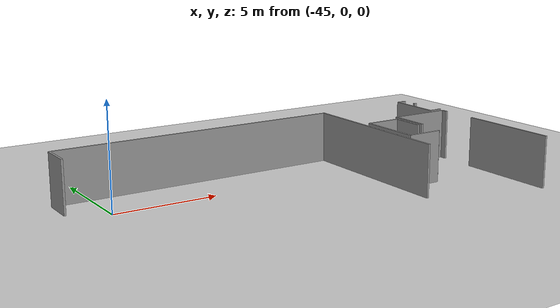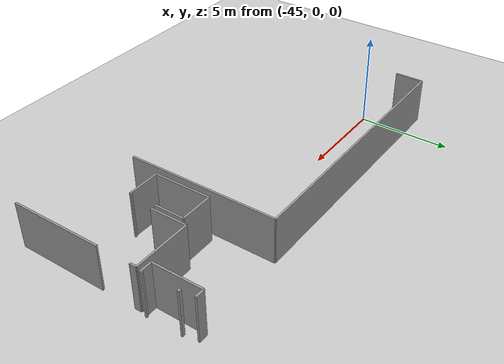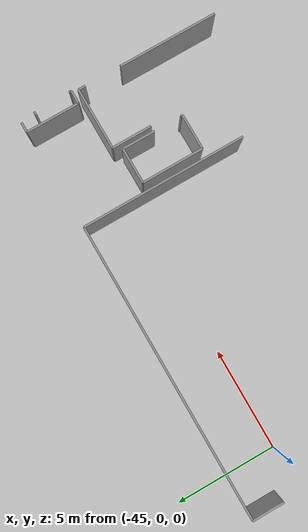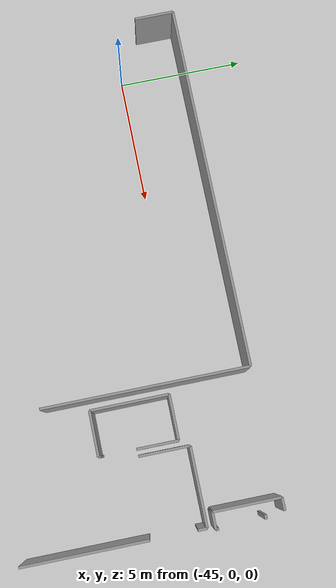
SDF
<sdf version="1.6">
 <world name="default">
  <model name="ground_plane">
   <static>1</static>
   <link name="link">
    <collision name="collision">
     <geometry><plane><normal>0 0 1</normal><size>100 100</size></plane></geometry>
     <surface><friction><ode><mu>100</mu><mu2>50</mu2></ode></friction></surface>
    </collision>
    <visual name="visual">
     <cast_shadows>0</cast_shadows>
     <geometry><plane><normal>0 0 1</normal><size>100 100</size></plane></geometry>
     <material>
      <script><uri>file://media/materials/scripts/gazebo.material</uri><name>Gazebo/Grey</name></script>
     </material>
    </visual>
   </link>
  </model>
  <model name="50045233">
   <static>1</static>
   <link name="Wall_115">
    <collision name="Wall_115_Collision">
     <geometry><box><size>1.54550934298 0.1 2.5</size></box></geometry>
     <pose>0.772754671489 0 1.25 0 0 0</pose>
    </collision>
    <visual name="Wall_115_Visual">
     <pose>0.772754671489 0 1.25 0 0 0</pose>
     <geometry><box><size>1.54550934298 0.1 2.5</size></box></geometry>
     <material>
      <script><uri>file://media/materials/scripts/gazebo.material</uri><name>Gazebo/Grey</name></script>
      <ambient>1 1 1 1</ambient>
     </material>
    </visual>
    <pose>0.0303289870245 -18.270613242 0 0 0 1.57079632679</pose>
   </link>
   <link name="Wall_116">
    <collision name="Wall_116_Collision">
     <geometry><box><size>14.4631198249 0.1 2.5</size></box></geometry>
     <pose>7.23155991244 0 1.25 0 0 0</pose>
    </collision>
    <visual name="Wall_116_Visual">
     <pose>7.23155991244 0 1.25 0 0 0</pose>
     <geometry><box><size>14.4631198249 0.1 2.5</size></box></geometry>
     <material>
      <script><uri>file://media/materials/scripts/gazebo.material</uri><name>Gazebo/Grey</name></script>
      <ambient>1 1 1 1</ambient>
     </material>
    </visual>
    <pose>0.0303289870245 -16.725103899 0 0 0 0.0</pose>
   </link>
   <link name="Wall_117">
    <collision name="Wall_117_Collision">
     <geometry><box><size>8.1050728086 0.1 2.5</size></box></geometry>
     <pose>4.0525364043 0 1.25 0 0 0</pose>
    </collision>
    <visual name="Wall_117_Visual">
     <pose>4.0525364043 0 1.25 0 0 0</pose>
     <geometry><box><size>8.1050728086 0.1 2.5</size></box></geometry>
     <material>
      <script><uri>file://media/materials/scripts/gazebo.material</uri><name>Gazebo/Grey</name></script>
      <ambient>1 1 1 1</ambient>
     </material>
    </visual>
    <pose>14.4934488119 -16.725103899 0 0 0 -1.57079632679</pose>
   </link>
   <link name="Wall_204">
    <collision name="Wall_204_Collision">
     <geometry><box><size>2.62796231084 0.1 2.5</size></box></geometry>
     <pose>1.31398115542 0 1.25 0 0 0</pose>
    </collision>
    <visual name="Wall_204_Visual">
     <pose>1.31398115542 0 1.25 0 0 0</pose>
     <geometry><box><size>2.62796231084 0.1 2.5</size></box></geometry>
     <material>
      <script><uri>file://media/materials/scripts/gazebo.material</uri><name>Gazebo/Grey</name></script>
      <ambient>1 1 1 1</ambient>
     </material>
    </visual>
    <pose>19.4633418991 -19.2616985502 0 0 0 1.57079632679</pose>
   </link>
   <link name="Wall_205">
    <collision name="Wall_205_Collision">
     <geometry><box><size>0.48818248152 0.1 2.5</size></box></geometry>
     <pose>0.24409124076 0 1.25 0 0 0</pose>
    </collision>
    <visual name="Wall_205_Visual">
     <pose>0.24409124076 0 1.25 0 0 0</pose>
     <geometry><box><size>0.48818248152 0.1 2.5</size></box></geometry>
     <material>
      <script><uri>file://media/materials/scripts/gazebo.material</uri><name>Gazebo/Grey</name></script>
      <ambient>1 1 1 1</ambient>
     </material>
    </visual>
    <pose>19.4633418991 -16.6337362393 0 0 0 0.0</pose>
   </link>
   <link name="Wall_207">
    <collision name="Wall_207_Collision">
     <geometry><box><size>0.159132007233 0.1 2.5</size></box></geometry>
     <pose>0.0795660036166 0 1.25 0 0 0</pose>
    </collision>
    <visual name="Wall_207_Visual">
     <pose>0.0795660036166 0 1.25 0 0 0</pose>
     <geometry><box><size>0.159132007233 0.1 2.5</size></box></geometry>
     <material>
      <script><uri>file://media/materials/scripts/gazebo.material</uri><name>Gazebo/Grey</name></script>
      <ambient>1 1 1 1</ambient>
     </material>
    </visual>
    <pose>19.9515243806 -17.3689921005 0 0 0 0.0</pose>
   </link>
   <link name="Wall_209">
    <collision name="Wall_209_Collision">
     <geometry><box><size>0.108879794423 0.1 2.5</size></box></geometry>
     <pose>0.0544398972114 0 1.25 0 0 0</pose>
    </collision>
    <visual name="Wall_209_Visual">
     <pose>0.0544398972114 0 1.25 0 0 0</pose>
     <geometry><box><size>0.108879794423 0.1 2.5</size></box></geometry>
     <material>
      <script><uri>file://media/materials/scripts/gazebo.material</uri><name>Gazebo/Grey</name></script>
      <ambient>1 1 1 1</ambient>
     </material>
    </visual>
    <pose>20.1106563878 -19.1557374449 0 0 0 -1.57079632679</pose>
   </link>
   <link name="Wall_210">
    <collision name="Wall_210_Collision">
     <geometry><box><size>0.647321068788 0.1 2.5</size></box></geometry>
     <pose>0.323660534394 0 1.25 0 0 0</pose>
    </collision>
    <visual name="Wall_210_Visual">
     <pose>0.323660534394 0 1.25 0 0 0</pose>
     <geometry><box><size>0.647321068788 0.1 2.5</size></box></geometry>
     <material>
      <script><uri>file://media/materials/scripts/gazebo.material</uri><name>Gazebo/Grey</name></script>
      <ambient>1 1 1 1</ambient>
     </material>
    </visual>
    <pose>20.1106563878 -19.2646172393 0 0 0 3.13708376433</pose>
   </link>
   <link name="Wall_213">
    <collision name="Wall_213_Collision">
     <geometry><box><size>1.9663081755 0.1 2.5</size></box></geometry>
     <pose>0.983154087751 0 1.25 0 0 0</pose>
    </collision>
    <visual name="Wall_213_Visual">
     <pose>0.983154087751 0 1.25 0 0 0</pose>
     <geometry><box><size>1.9663081755 0.1 2.5</size></box></geometry>
     <material>
      <script><uri>file://media/materials/scripts/gazebo.material</uri><name>Gazebo/Grey</name></script>
      <ambient>1 1 1 1</ambient>
     </material>
    </visual>
    <pose>16.9427365883 -21.5356111798 0 0 0 1.57079632679</pose>
   </link>
   <link name="Wall_214">
    <collision name="Wall_214_Collision">
     <geometry><box><size>3.06068969893 0.1 2.5</size></box></geometry>
     <pose>1.53034484947 0 1.25 0 0 0</pose>
    </collision>
    <visual name="Wall_214_Visual">
     <pose>1.53034484947 0 1.25 0 0 0</pose>
     <geometry><box><size>3.06068969893 0.1 2.5</size></box></geometry>
     <material>
      <script><uri>file://media/materials/scripts/gazebo.material</uri><name>Gazebo/Grey</name></script>
      <ambient>1 1 1 1</ambient>
     </material>
    </visual>
    <pose>16.9427365883 -19.5693030043 0 0 0 0.0</pose>
   </link>
   <link name="Wall_215">
    <collision name="Wall_215_Collision">
     <geometry><box><size>0.348212302909 0.1 2.5</size></box></geometry>
     <pose>0.174106151455 0 1.25 0 0 0</pose>
    </collision>
    <visual name="Wall_215_Visual">
     <pose>0.174106151455 0 1.25 0 0 0</pose>
     <geometry><box><size>0.348212302909 0.1 2.5</size></box></geometry>
     <material>
      <script><uri>file://media/materials/scripts/gazebo.material</uri><name>Gazebo/Grey</name></script>
      <ambient>1 1 1 1</ambient>
     </material>
    </visual>
    <pose>20.0034262872 -19.5693030043 0 0 0 -1.57079632679</pose>
   </link>
   <link name="Wall_216">
    <collision name="Wall_216_Collision">
     <geometry><box><size>4.89362647124 0.1 2.5</size></box></geometry>
     <pose>2.44681323562 0 1.25 0 0 0</pose>
    </collision>
    <visual name="Wall_216_Visual">
     <pose>2.44681323562 0 1.25 0 0 0</pose>
     <geometry><box><size>4.89362647124 0.1 2.5</size></box></geometry>
     <material>
      <script><uri>file://media/materials/scripts/gazebo.material</uri><name>Gazebo/Grey</name></script>
      <ambient>1 1 1 1</ambient>
     </material>
    </visual>
    <pose>20.0034262872 -21.7240569779 0 0 0 -1.57079632679</pose>
   </link>
   <link name="Wall_219">
    <collision name="Wall_219_Collision">
     <geometry><box><size>1.74639129469 0.1 2.5</size></box></geometry>
     <pose>0.873195647346 0 1.25 0 0 0</pose>
    </collision>
    <visual name="Wall_219_Visual">
     <pose>0.873195647346 0 1.25 0 0 0</pose>
     <geometry><box><size>1.74639129469 0.1 2.5</size></box></geometry>
     <material>
      <script><uri>file://media/materials/scripts/gazebo.material</uri><name>Gazebo/Grey</name></script>
      <ambient>1 1 1 1</ambient>
     </material>
    </visual>
    <pose>14.9251610038 -23.0001586244 0 0 0 0.0</pose>
   </link>
   <link name="Wall_220">
    <collision name="Wall_220_Collision">
     <geometry><box><size>0.0959360426382 0.1 2.5</size></box></geometry>
     <pose>0.0479680213191 0 1.25 0 0 0</pose>
    </collision>
    <visual name="Wall_220_Visual">
     <pose>0.0479680213191 0 1.25 0 0 0</pose>
     <geometry><box><size>0.0959360426382 0.1 2.5</size></box></geometry>
     <material>
      <script><uri>file://media/materials/scripts/gazebo.material</uri><name>Gazebo/Grey</name></script>
      <ambient>1 1 1 1</ambient>
     </material>
    </visual>
    <pose>16.6715522985 -23.0001586244 0 0 0 1.57079632679</pose>
   </link>
   <link name="Wall_221">
    <collision name="Wall_221_Collision">
     <geometry><box><size>1.60210653215 0.1 2.5</size></box></geometry>
     <pose>0.801053266077 0 1.25 0 0 0</pose>
    </collision>
    <visual name="Wall_221_Visual">
     <pose>0.801053266077 0 1.25 0 0 0</pose>
     <geometry><box><size>1.60210653215 0.1 2.5</size></box></geometry>
     <material>
      <script><uri>file://media/materials/scripts/gazebo.material</uri><name>Gazebo/Grey</name></script>
      <ambient>1 1 1 1</ambient>
     </material>
    </visual>
    <pose>16.6715522985 -21.5529964151 0 0 0 1.57079632679</pose>
   </link>
   <link name="Wall_222">
    <collision name="Wall_222_Collision">
     <geometry><box><size>1.75641635735 0.1 2.5</size></box></geometry>
     <pose>0.878208178675 0 1.25 0 0 0</pose>
    </collision>
    <visual name="Wall_222_Visual">
     <pose>0.878208178675 0 1.25 0 0 0</pose>
     <geometry><box><size>1.75641635735 0.1 2.5</size></box></geometry>
     <material>
      <script><uri>file://media/materials/scripts/gazebo.material</uri><name>Gazebo/Grey</name></script>
      <ambient>1 1 1 1</ambient>
     </material>
    </visual>
    <pose>16.6715522985 -19.9508898829 0 0 0 3.14159265359</pose>
   </link>
   <link name="Wall_223">
    <collision name="Wall_223_Collision">
     <geometry><box><size>3.0492852211 0.1 2.5</size></box></geometry>
     <pose>1.52464261055 0 1.25 0 0 0</pose>
    </collision>
    <visual name="Wall_223_Visual">
     <pose>1.52464261055 0 1.25 0 0 0</pose>
     <geometry><box><size>3.0492852211 0.1 2.5</size></box></geometry>
     <material>
      <script><uri>file://media/materials/scripts/gazebo.material</uri><name>Gazebo/Grey</name></script>
      <ambient>1 1 1 1</ambient>
     </material>
    </visual>
    <pose>14.9151359411 -19.9508898829 0 0 0 -1.5675086446</pose>
   </link>
   <pose>-46.75 19.2209891818 0 0 0 0</pose>
  </model>
 </world>
</sdf>
